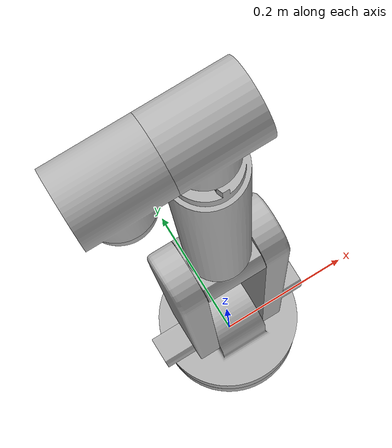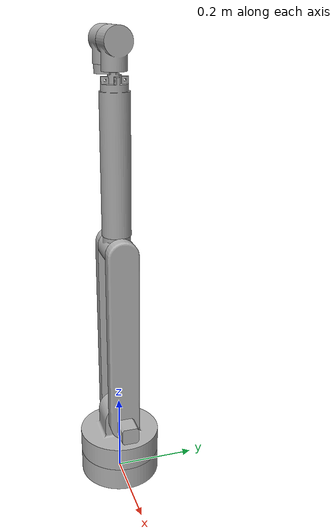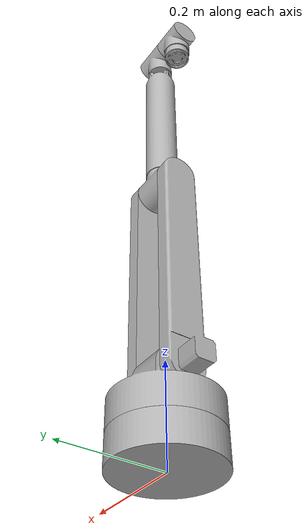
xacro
<?xml version="1.0" ?>
<robot name="urdf_v2" xmlns:xacro="http://www.ros.org/wiki/xacro">

<xacro:include filename="$(find urdf_v2_description)/urdf/materials.xacro" />
<xacro:include filename="$(find urdf_v2_description)/urdf/urdf_v2.trans" />
<xacro:include filename="$(find urdf_v2_description)/urdf/urdf_v2.gazebo" />
<link name="base_link">
  <inertial>
    <origin rpy="0 0 0" xyz="9.27646689295452e-17 0.002502179411741545 0.031530836940469015"/>
    <mass value="5.387475041858852"/>
    <inertia ixx="0.017786" ixy="0.0" ixz="0.0" iyy="0.017421" iyz="7.8e-05" izz="0.030211"/>
  </inertial>
  <visual>
    <origin rpy="0 0 0" xyz="0 0 0"/>
    <geometry>
      <mesh filename="package://urdf_v2_description/meshes/base_link.stl" scale="0.001 0.001 0.001"/>
    </geometry>
    <material name="silver"/>
  </visual>
  <collision>
    <origin rpy="0 0 0" xyz="0 0 0"/>
    <geometry>
      <mesh filename="package://urdf_v2_description/meshes/base_link.stl" scale="0.001 0.001 0.001"/>
    </geometry>
  </collision>
</link>

<link name="link1_1">
  <inertial>
    <origin rpy="0 0 0" xyz="-1.2827522034048756e-16 -1.8062726481813344e-15 0.039455563956895257"/>
    <mass value="11.148896287503439"/>
    <inertia ixx="0.043235" ixy="0.0" ixz="-0.0" iyy="0.04406" iyz="0.0" izz="0.064649"/>
  </inertial>
  <visual>
    <origin rpy="0 0 0" xyz="-0.0 -0.0 -0.06"/>
    <geometry>
      <mesh filename="package://urdf_v2_description/meshes/link1_1.stl" scale="0.001 0.001 0.001"/>
    </geometry>
    <material name="silver"/>
  </visual>
  <collision>
    <origin rpy="0 0 0" xyz="-0.0 -0.0 -0.06"/>
    <geometry>
      <mesh filename="package://urdf_v2_description/meshes/link1_1.stl" scale="0.001 0.001 0.001"/>
    </geometry>
  </collision>
</link>

<link name="link2_1">
  <inertial>
    <origin rpy="0 0 0" xyz="-5.184426132363233e-15 -1.0346687658288088e-16 0.21185478916792946"/>
    <mass value="19.354444710323396"/>
    <inertia ixx="0.455969" ixy="-0.0" ixz="-0.0" iyy="0.504725" iyz="0.0" izz="0.065051"/>
  </inertial>
  <visual>
    <origin rpy="0 0 0" xyz="-0.0 -0.0 -0.165"/>
    <geometry>
      <mesh filename="package://urdf_v2_description/meshes/link2_1.stl" scale="0.001 0.001 0.001"/>
    </geometry>
    <material name="silver"/>
  </visual>
  <collision>
    <origin rpy="0 0 0" xyz="-0.0 -0.0 -0.165"/>
    <geometry>
      <mesh filename="package://urdf_v2_description/meshes/link2_1.stl" scale="0.001 0.001 0.001"/>
    </geometry>
  </collision>
</link>

<link name="link3_1">
  <inertial>
    <origin rpy="0 0 0" xyz="8.324682363608491e-13 -1.0677895964141353e-12 -0.004655758715397584"/>
    <mass value="0.7685744974336697"/>
    <inertia ixx="0.000761" ixy="0.0" ixz="-0.0" iyy="0.000758" iyz="-0.0" izz="0.000878"/>
  </inertial>
  <visual>
    <origin rpy="0 0 0" xyz="0.0 -0.0 -0.615"/>
    <geometry>
      <mesh filename="package://urdf_v2_description/meshes/link3_1.stl" scale="0.001 0.001 0.001"/>
    </geometry>
    <material name="silver"/>
  </visual>
  <collision>
    <origin rpy="0 0 0" xyz="0.0 -0.0 -0.615"/>
    <geometry>
      <mesh filename="package://urdf_v2_description/meshes/link3_1.stl" scale="0.001 0.001 0.001"/>
    </geometry>
  </collision>
</link>

<link name="link4_1">
  <inertial>
    <origin rpy="0 0 0" xyz="0.0009273107351192553 -1.1824882825038173e-11 0.2132256494385576"/>
    <mass value="11.296130510833365"/>
    <inertia ixx="0.18124" ixy="0.0" ixz="-0.002166" iyy="0.181485" iyz="0.0" izz="0.006591"/>
  </inertial>
  <visual>
    <origin rpy="0 0 0" xyz="0.0 -0.0 -0.65"/>
    <geometry>
      <mesh filename="package://urdf_v2_description/meshes/link4_1.stl" scale="0.001 0.001 0.001"/>
    </geometry>
    <material name="silver"/>
  </visual>
  <collision>
    <origin rpy="0 0 0" xyz="0.0 -0.0 -0.65"/>
    <geometry>
      <mesh filename="package://urdf_v2_description/meshes/link4_1.stl" scale="0.001 0.001 0.001"/>
    </geometry>
  </collision>
</link>

<link name="link5_1">
  <inertial>
    <origin rpy="0 0 0" xyz="-0.03868765951728011 -6.552705457100107e-07 -0.0051210460003983105"/>
    <mass value="1.760604762092445"/>
    <inertia ixx="0.001128" ixy="0.0" ixz="2.4e-05" iyy="0.001252" iyz="-0.0" izz="0.001062"/>
  </inertial>
  <visual>
    <origin rpy="0 0 0" xyz="0.034 -0.0 -1.07"/>
    <geometry>
      <mesh filename="package://urdf_v2_description/meshes/link5_1.stl" scale="0.001 0.001 0.001"/>
    </geometry>
    <material name="silver"/>
  </visual>
  <collision>
    <origin rpy="0 0 0" xyz="0.034 -0.0 -1.07"/>
    <geometry>
      <mesh filename="package://urdf_v2_description/meshes/link5_1.stl" scale="0.001 0.001 0.001"/>
    </geometry>
  </collision>
</link>

<link name="link6_1">
  <inertial>
    <origin rpy="0 0 0" xyz="-1.1518563880485999e-14 1.718732506814716e-16 -0.008972081218276973"/>
    <mass value="0.3400821171400766"/>
    <inertia ixx="7.8e-05" ixy="-0.0" ixz="0.0" iyy="7.8e-05" iyz="0.0" izz="0.000137"/>
  </inertial>
  <visual>
    <origin rpy="0 0 0" xyz="0.07 -0.0 -1.02"/>
    <geometry>
      <mesh filename="package://urdf_v2_description/meshes/link6_1.stl" scale="0.001 0.001 0.001"/>
    </geometry>
    <material name="silver"/>
  </visual>
  <collision>
    <origin rpy="0 0 0" xyz="0.07 -0.0 -1.02"/>
    <geometry>
      <mesh filename="package://urdf_v2_description/meshes/link6_1.stl" scale="0.001 0.001 0.001"/>
    </geometry>
  </collision>
</link>

<joint name="joint1" type="continuous">
  <origin rpy="0 0 0" xyz="0.0 0.0 0.06"/>
  <parent link="base_link"/>
  <child link="link1_1"/>
  <axis xyz="0.0 0.0 1.0"/>
</joint>

<joint name="joint2" type="continuous">
  <origin rpy="0 0 0" xyz="0.0 0.0 0.105"/>
  <parent link="link1_1"/>
  <child link="link2_1"/>
  <axis xyz="-1.0 0.0 0.0"/>
</joint>

<joint name="joint3" type="continuous">
  <origin rpy="0 0 0" xyz="-0.0 0.0 0.45"/>
  <parent link="link2_1"/>
  <child link="link3_1"/>
  <axis xyz="1.0 0.0 0.0"/>
</joint>

<joint name="joint4" type="continuous">
  <origin rpy="0 0 0" xyz="0.0 0.0 0.035"/>
  <parent link="link3_1"/>
  <child link="link4_1"/>
  <axis xyz="0.0 0.0 -1.0"/>
</joint>

<joint name="joint5" type="continuous">
  <origin rpy="0 0 0" xyz="-0.034 0.0 0.42"/>
  <parent link="link4_1"/>
  <child link="link5_1"/>
  <axis xyz="1.0 0.0 0.0"/>
</joint>

<joint name="joint6" type="continuous">
  <origin rpy="0 0 0" xyz="-0.036 0.0 -0.05"/>
  <parent link="link5_1"/>
  <child link="link6_1"/>
  <axis xyz="-0.0 0.0 1.0"/>
</joint>

</robot>

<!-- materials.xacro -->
<robot name="urdf_v2" xmlns:xacro="http://www.ros.org/wiki/xacro" >

<material name="silver">
  <color rgba="0.700 0.700 0.700 1.000"/>
</material>

</robot>

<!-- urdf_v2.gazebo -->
<robot name="urdf_v2" xmlns:xacro="http://www.ros.org/wiki/xacro" >

<xacro:property name="body_color" value="Gazebo/Silver" />

<gazebo>
  <plugin filename="libgazebo_ros_control.so" name="control"/>
</gazebo>
<gazebo reference="base_link">
  <material>${body_color}</material>
  <mu1>0.2</mu1>
  <mu2>0.2</mu2>
  <selfCollide>true</selfCollide>
  <gravity>true</gravity>
</gazebo>

<gazebo reference="link1_1">
  <material>${body_color}</material>
  <mu1>0.2</mu1>
  <mu2>0.2</mu2>
  <selfCollide>true</selfCollide>
</gazebo>

<gazebo reference="link2_1">
  <material>${body_color}</material>
  <mu1>0.2</mu1>
  <mu2>0.2</mu2>
  <selfCollide>true</selfCollide>
</gazebo>

<gazebo reference="link3_1">
  <material>${body_color}</material>
  <mu1>0.2</mu1>
  <mu2>0.2</mu2>
  <selfCollide>true</selfCollide>
</gazebo>

<gazebo reference="link4_1">
  <material>${body_color}</material>
  <mu1>0.2</mu1>
  <mu2>0.2</mu2>
  <selfCollide>true</selfCollide>
</gazebo>

<gazebo reference="link5_1">
  <material>${body_color}</material>
  <mu1>0.2</mu1>
  <mu2>0.2</mu2>
  <selfCollide>true</selfCollide>
</gazebo>

<gazebo reference="link6_1">
  <material>${body_color}</material>
  <mu1>0.2</mu1>
  <mu2>0.2</mu2>
  <selfCollide>true</selfCollide>
</gazebo>

</robot>
